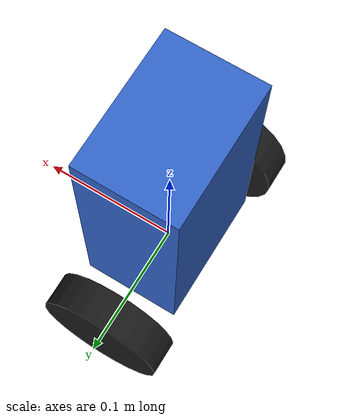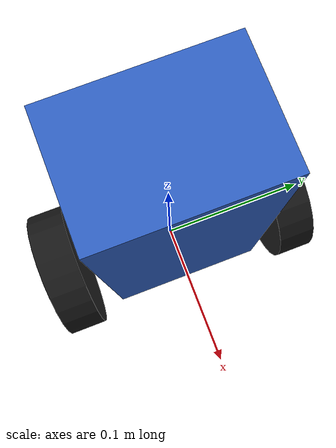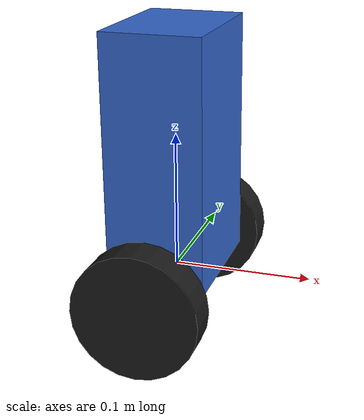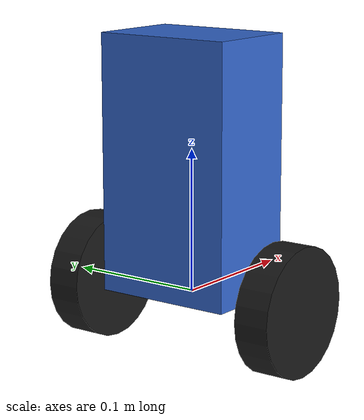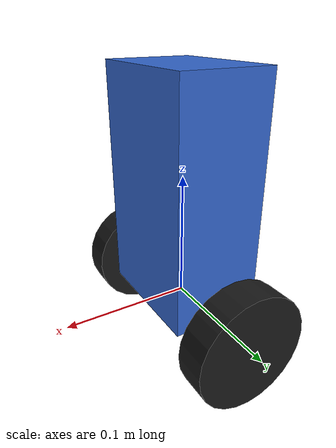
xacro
<?xml version="1.0"?>
<robot xmlns:xacro="http://www.ros.org/wiki/xacro" name="sbr">

  <!-- Arguments                                                     -->
  <!-- use_sim: when true, pull in the Gazebo sensors + ros2_control -->
  <xacro:arg name="use_sim" default="false"/>
  <!-- controllers_config: absolute path to a ros2_control YAML,     -->
  <!-- only used by the Gazebo plugin when use_sim is true.          -->
  <xacro:arg name="controllers_config" default=""/>

  <!-- Geometry / mass properties                                    -->
  <!-- The chassis centre of mass sits high above the wheel axle so  -->
  <!-- the model behaves like a real inverted pendulum.              -->
  <xacro:property name="body_width"   value="0.10"/>
  <xacro:property name="body_depth"   value="0.07"/>
  <xacro:property name="body_height"  value="0.18"/>
  <xacro:property name="body_mass"    value="0.9"/>

  <xacro:property name="wheel_radius"     value="0.045"/>
  <xacro:property name="wheel_width"      value="0.025"/>
  <xacro:property name="wheel_mass"       value="0.15"/>
  <xacro:property name="wheel_separation" value="0.16"/>

  <xacro:property name="PI" value="3.14159265359"/>

  <!-- Inertia helper macros                                         -->
  <xacro:macro name="box_inertia" params="m x y z *origin">
    <inertial>
      <xacro:insert_block name="origin"/>
      <mass value="${m}"/>
      <inertia
        ixx="${m * (y*y + z*z) / 12.0}" ixy="0.0" ixz="0.0"
        iyy="${m * (x*x + z*z) / 12.0}" iyz="0.0"
        izz="${m * (x*x + y*y) / 12.0}"/>
    </inertial>
  </xacro:macro>

  <!-- Materials                                                     -->
  <material name="chassis_color"><color rgba="0.20 0.40 0.80 1.0"/></material>
  <material name="wheel_color"><color rgba="0.10 0.10 0.10 1.0"/></material>
  <material name="imu_color"><color rgba="0.90 0.70 0.10 1.0"/></material>

  <!-- base_link: located at the wheel axle centre                   -->
  <link name="base_link"/>

  <!-- Chassis (the inverted-pendulum body)                          -->
  <link name="chassis_link">
    <visual>
      <origin xyz="0 0 ${body_height/2.0}" rpy="0 0 0"/>
      <geometry><box size="${body_depth} ${body_width} ${body_height}"/></geometry>
      <material name="chassis_color"/>
    </visual>
    <collision>
      <origin xyz="0 0 ${body_height/2.0}" rpy="0 0 0"/>
      <geometry><box size="${body_depth} ${body_width} ${body_height}"/></geometry>
    </collision>
    <xacro:box_inertia m="${body_mass}" x="${body_depth}" y="${body_width}" z="${body_height}">
      <origin xyz="0 0 ${body_height/2.0}" rpy="0 0 0"/>
    </xacro:box_inertia>
  </link>
  <joint name="chassis_joint" type="fixed">
    <parent link="base_link"/>
    <child link="chassis_link"/>
    <origin xyz="0 0 0" rpy="0 0 0"/>
  </joint>

  <!-- Wheels (continuous joints about the Y axis)                   -->
  <xacro:macro name="wheel" params="prefix reflect">
    <link name="${prefix}_wheel_link">
      <visual>
        <origin xyz="0 0 0" rpy="${PI/2.0} 0 0"/>
        <geometry><cylinder radius="${wheel_radius}" length="${wheel_width}"/></geometry>
        <material name="wheel_color"/>
      </visual>
      <collision>
        <origin xyz="0 0 0" rpy="${PI/2.0} 0 0"/>
        <geometry><cylinder radius="${wheel_radius}" length="${wheel_width}"/></geometry>
      </collision>
      <inertial>
        <origin xyz="0 0 0" rpy="0 0 0"/>
        <mass value="${wheel_mass}"/>
        <!-- symmetry axis (spin) is Y -> iyy = m r^2 / 2 -->
        <inertia
          ixx="${wheel_mass * (3.0*wheel_radius*wheel_radius + wheel_width*wheel_width) / 12.0}" ixy="0.0" ixz="0.0"
          iyy="${wheel_mass * wheel_radius*wheel_radius / 2.0}" iyz="0.0"
          izz="${wheel_mass * (3.0*wheel_radius*wheel_radius + wheel_width*wheel_width) / 12.0}"/>
      </inertial>
    </link>
    <joint name="${prefix}_wheel_joint" type="continuous">
      <parent link="base_link"/>
      <child link="${prefix}_wheel_link"/>
      <origin xyz="0 ${reflect * wheel_separation / 2.0} 0" rpy="0 0 0"/>
      <axis xyz="0 1 0"/>
      <dynamics damping="0.001" friction="0.001"/>
    </joint>
  </xacro:macro>

  <xacro:wheel prefix="left"  reflect="1"/>
  <xacro:wheel prefix="right" reflect="-1"/>

  <!-- IMU (fixed near the top of the chassis)                       -->
  <link name="imu_link">
    <visual>
      <geometry><box size="0.02 0.02 0.005"/></geometry>
      <material name="imu_color"/>
    </visual>
    <xacro:box_inertia m="0.01" x="0.02" y="0.02" z="0.005">
      <origin xyz="0 0 0" rpy="0 0 0"/>
    </xacro:box_inertia>
  </link>
  <joint name="imu_joint" type="fixed">
    <parent link="chassis_link"/>
    <child link="imu_link"/>
    <origin xyz="0 0 ${body_height * 0.6}" rpy="0 0 0"/>
  </joint>

  <!-- Simulation-only: Gazebo sensors + ros2_control                -->
  <xacro:if value="$(arg use_sim)">
    <xacro:include filename="$(find sbr_description)/urdf/sbr.gazebo.xacro"/>
  </xacro:if>

</robot>
